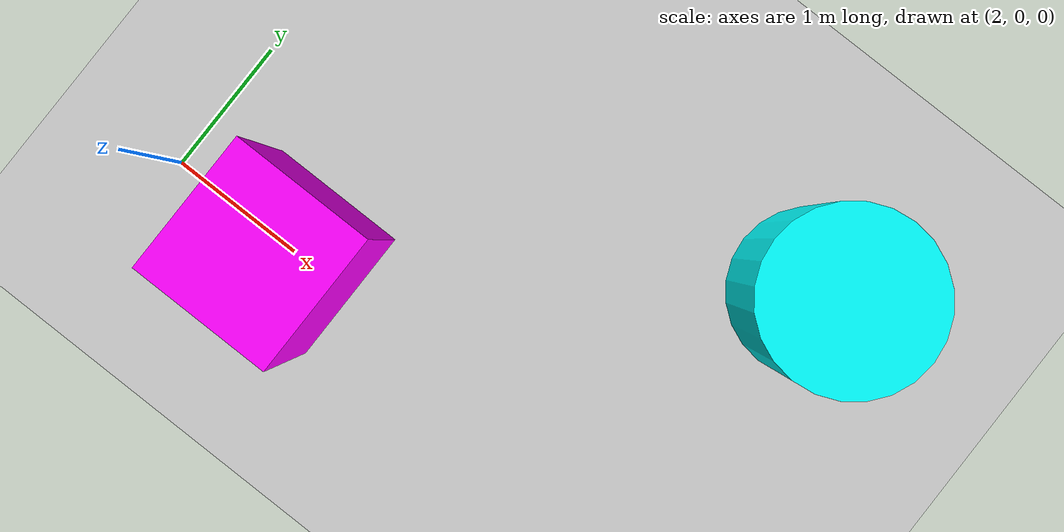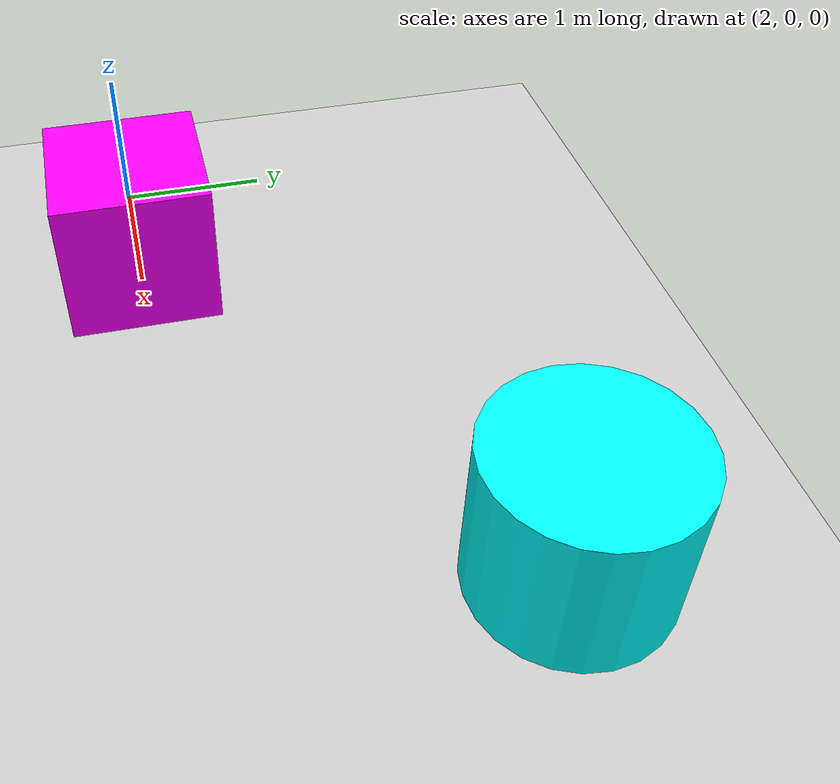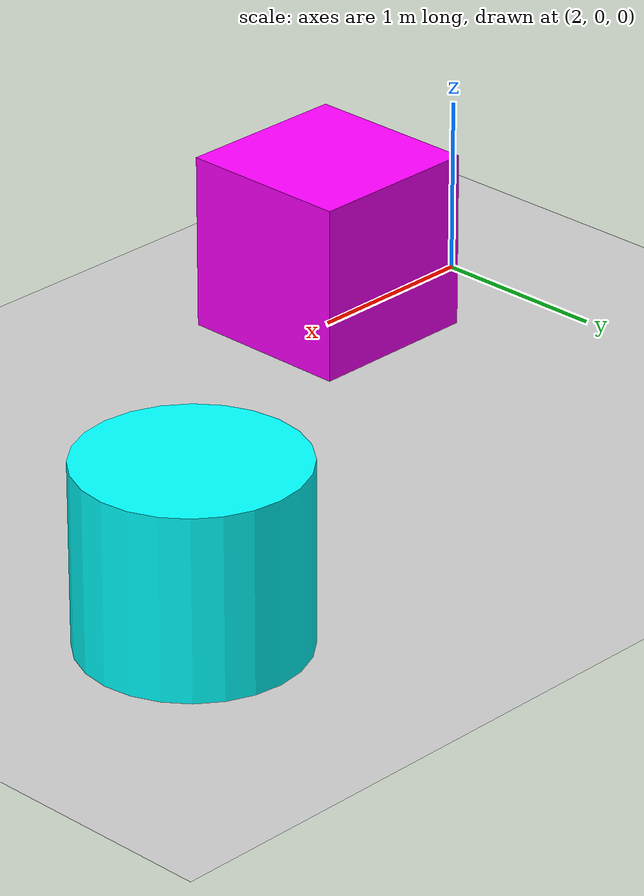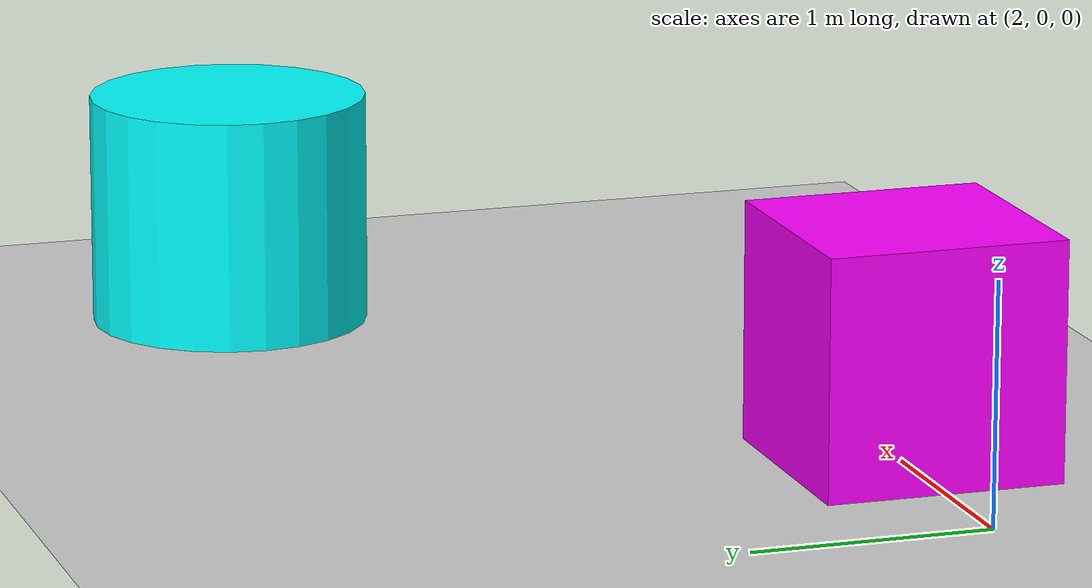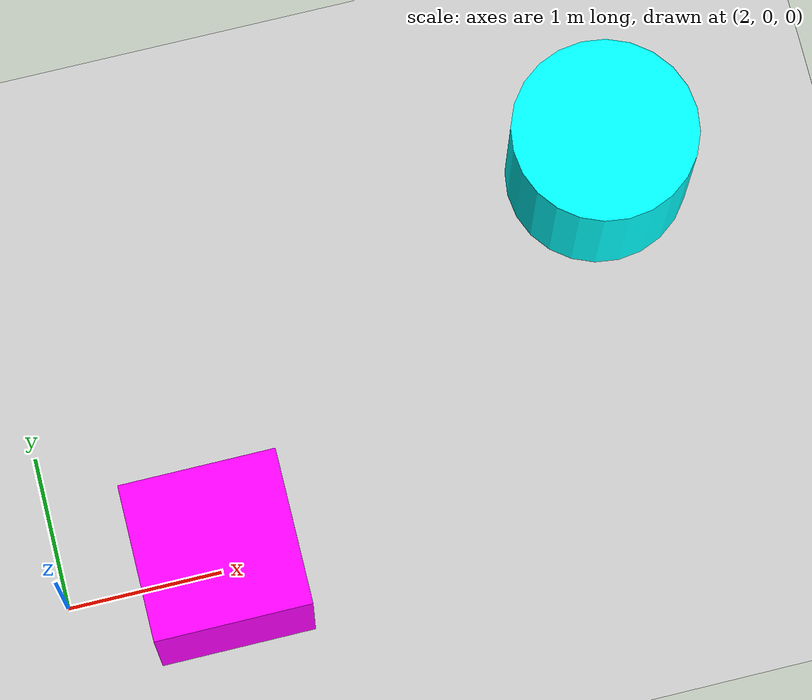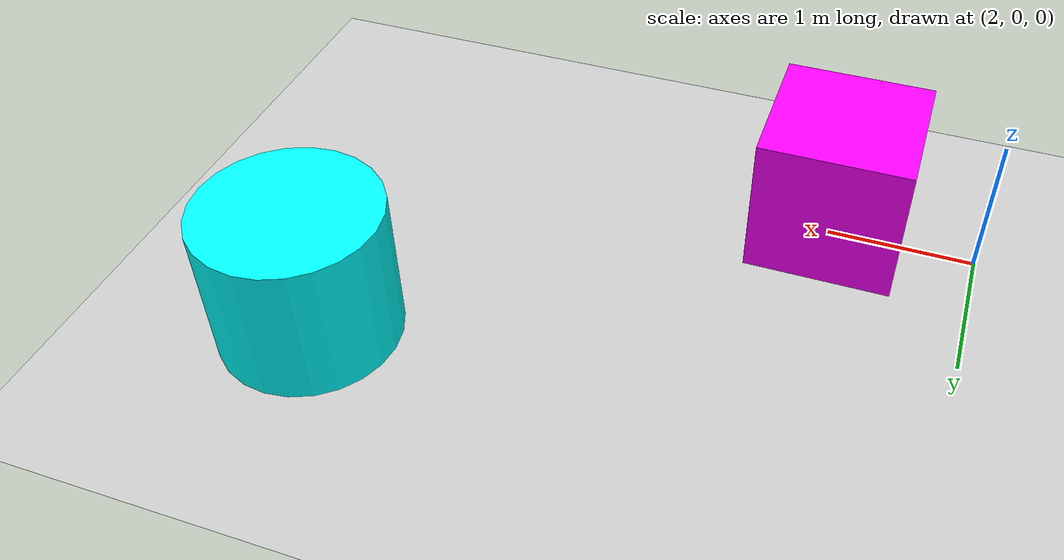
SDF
<?xml version="1.0" ?>
<sdf version="1.7">
  <world name="scenario_4_high_speed_dynamic">
    <!-- Sunlight -->
    <include>
      <uri>model://sun</uri>
    </include>

    <!-- Flat ground -->
    <include>
      <uri>model://ground_plane</uri>
    </include>

    <!-- Fast moving dynamic obstacles -->
    <model name="fast_obstacle_1">
      <pose>3.0 0.0 0.5 0 0 0</pose>
      <link name="link">
        <collision name="collision">
          <geometry>
            <box>
              <size>1.0 1.0 1.0</size>
            </box>
          </geometry>
        </collision>
        <visual name="visual">
          <geometry>
            <box>
              <size>1.0 1.0 1.0</size>
            </box>
          </geometry>
          <material>
            <ambient>1.0 0.0 1.0 1</ambient>
            <diffuse>1.0 0.0 1.0 1</diffuse>
          </material>
        </visual>
        <inertial>
          <mass>5.0</mass>
          <inertia>
            <ixx>1.0</ixx>
            <iyy>1.0</iyy>
            <izz>1.0</izz>
          </inertia>
        </inertial>
      </link>
      <plugin name="move_plugin" filename="libgazebo_ros_planar_move.so">
        <command_topic>cmd_vel</command_topic>
        <odometry_topic>odom</odometry_topic>
        <odometry_frame>odom</odometry_frame>
        <base_frame_id>base_link</base_frame_id>
      </plugin>
    </model>

    <model name="fast_obstacle_2">
      <pose>6.0 2.0 0.5 0 0 0</pose>
      <link name="link">
        <collision name="collision">
          <geometry>
            <cylinder>
              <radius>0.6</radius>
              <length>1.0</length>
            </cylinder>
          </geometry>
        </collision>
        <visual name="visual">
          <geometry>
            <cylinder>
              <radius>0.6</radius>
              <length>1.0</length>
            </cylinder>
          </geometry>
          <material>
            <ambient>0.0 1.0 1.0 1</ambient>
            <diffuse>0.0 1.0 1.0 1</diffuse>
          </material>
        </visual>
        <inertial>
          <mass>3.0</mass>
          <inertia>
            <ixx>1.0</ixx>
            <iyy>1.0</iyy>
            <izz>1.0</izz>
          </inertia>
        </inertial>
      </link>
    </model>

  </world>
</sdf>
